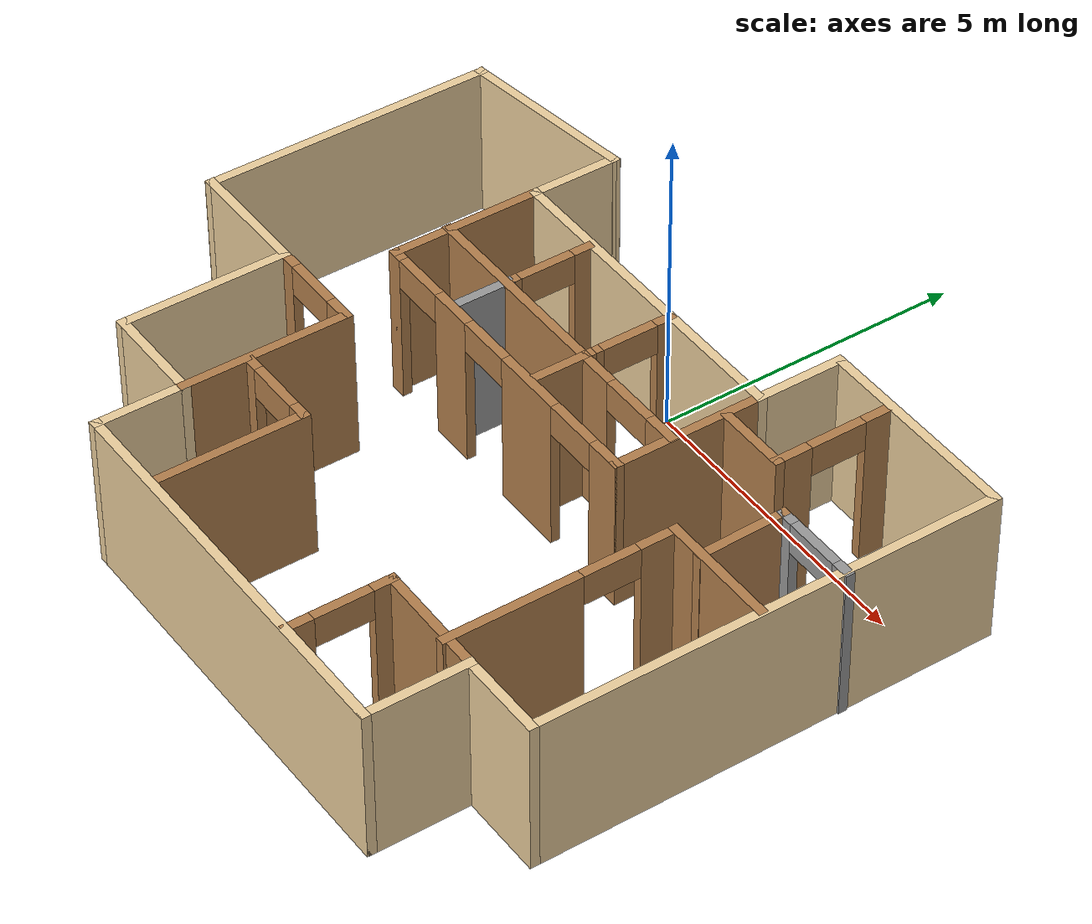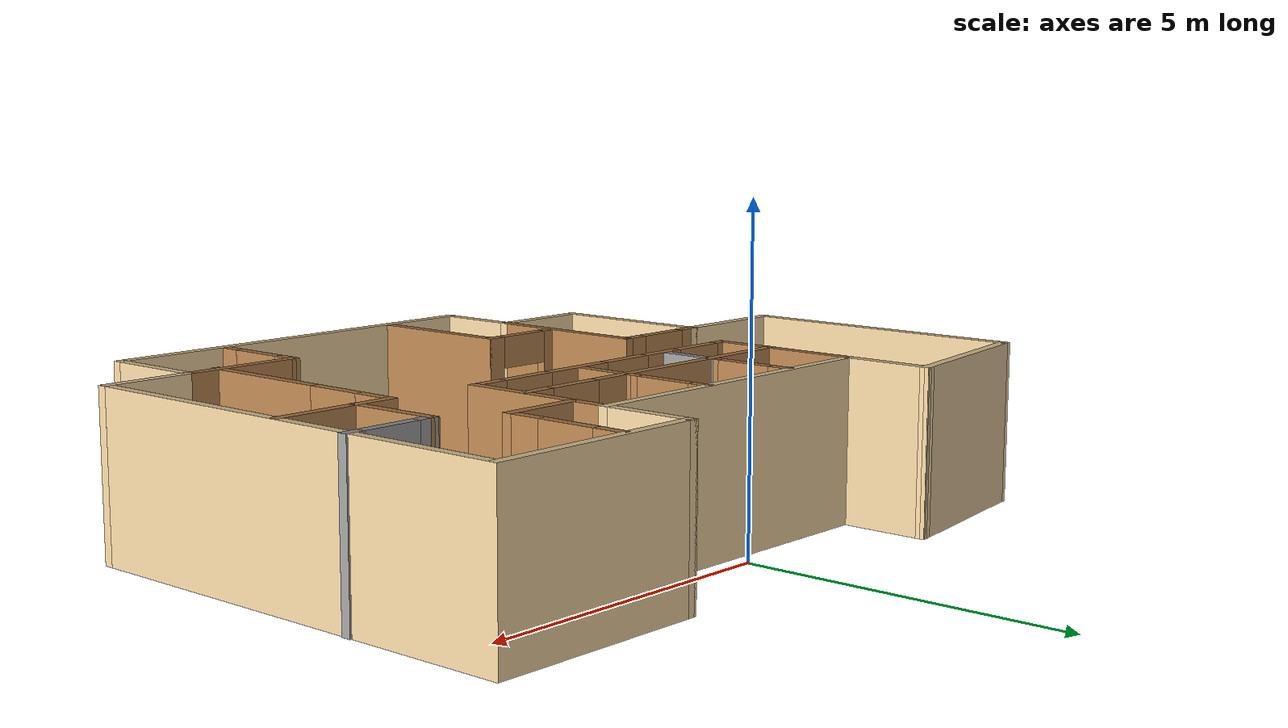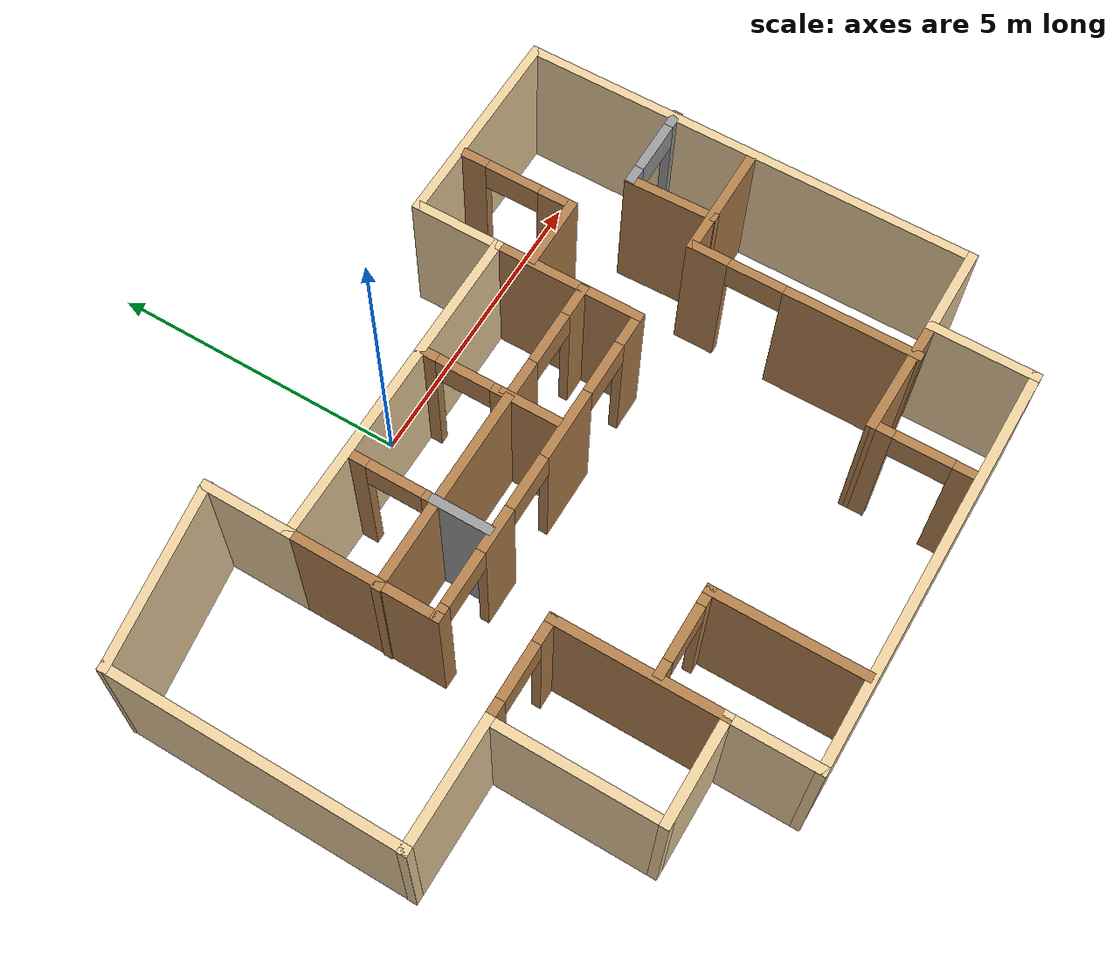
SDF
<?xml version='1.0'?>
<sdf version='1.6'>
  <model name='office'>
    <pose frame=''>0.170016 -3.47007 0 0 -0 0</pose>
    <link name='Wall_0'>
      <collision name='Wall_0_Collision'>
        <geometry>
          <box>
            <size>4.75 0.15 2.5</size>
          </box>
        </geometry>
        <pose frame=''>0 0 1.25 0 -0 0</pose>
      </collision>
      <visual name='Wall_0_Visual'>
        <pose frame=''>0 0 1.25 0 -0 0</pose>
        <geometry>
          <box>
            <size>4.75 0.15 2.5</size>
          </box>
        </geometry>
        <material>
          <script>
            <uri>file://media/materials/scripts/gazebo.material</uri>
            <name>Gazebo/Grey</name>
          </script>
          <ambient>0.921569 0.807843 0.615686 1</ambient>
        </material>
        <meta>
          <layer>0</layer>
        </meta>
      </visual>
      <pose frame=''>-5.75692 1.77007 0 0 -0 1.5708</pose>
    </link>
    <link name='Wall_10'>
      <collision name='Wall_10_Collision'>
        <geometry>
          <box>
            <size>1.5 0.15 2.5</size>
          </box>
        </geometry>
        <pose frame=''>0 0 1.25 0 -0 0</pose>
      </collision>
      <visual name='Wall_10_Visual'>
        <pose frame=''>0 0 1.25 0 -0 0</pose>
        <geometry>
          <box>
            <size>1.5 0.15 2.5</size>
          </box>
        </geometry>
        <material>
          <script>
            <uri>file://media/materials/scripts/gazebo.material</uri>
            <name>Gazebo/Grey</name>
          </script>
          <ambient>0.921569 0.807843 0.615686 1</ambient>
        </material>
        <meta>
          <layer>0</layer>
        </meta>
      </visual>
      <pose frame=''>-2.21002 -3.80493 0 0 -0 1.5708</pose>
    </link>
    <link name='Wall_11'>
      <collision name='Wall_11_Collision'>
        <geometry>
          <box>
            <size>1.75 0.15 2.5</size>
          </box>
        </geometry>
        <pose frame=''>0 0 1.25 0 -0 0</pose>
      </collision>
      <visual name='Wall_11_Visual'>
        <pose frame=''>0 0 1.25 0 -0 0</pose>
        <geometry>
          <box>
            <size>1.75 0.15 2.5</size>
          </box>
        </geometry>
        <material>
          <script>
            <uri>file://media/materials/scripts/gazebo.material</uri>
            <name>Gazebo/Grey</name>
          </script>
          <ambient>0.921569 0.807843 0.615686 1</ambient>
        </material>
        <meta>
          <layer>0</layer>
        </meta>
      </visual>
      <pose frame=''>-3.01002 -3.12993 0 0 -0 3.14159</pose>
    </link>
    <link name='Wall_12'>
      <collision name='Wall_12_Collision'>
        <geometry>
          <box>
            <size>2.75 0.15 2.5</size>
          </box>
        </geometry>
        <pose frame=''>0 0 1.25 0 -0 0</pose>
      </collision>
      <visual name='Wall_12_Visual'>
        <pose frame=''>0 0 1.25 0 -0 0</pose>
        <geometry>
          <box>
            <size>2.75 0.15 2.5</size>
          </box>
        </geometry>
        <material>
          <script>
            <uri>file://media/materials/scripts/gazebo.material</uri>
            <name>Gazebo/Grey</name>
          </script>
          <ambient>0.921569 0.807843 0.615686 1</ambient>
        </material>
        <meta>
          <layer>0</layer>
        </meta>
      </visual>
      <pose frame=''>-3.81002 -1.82993 0 0 -0 1.5708</pose>
    </link>
    <link name='Wall_13'>
      <collision name='Wall_13_Collision'>
        <geometry>
          <box>
            <size>2.10187 0.15 2.5</size>
          </box>
        </geometry>
        <pose frame=''>0 0 1.25 0 -0 0</pose>
      </collision>
      <visual name='Wall_13_Visual'>
        <pose frame=''>0 0 1.25 0 -0 0</pose>
        <geometry>
          <box>
            <size>2.10187 0.15 2.5</size>
          </box>
        </geometry>
        <material>
          <script>
            <uri>file://media/materials/scripts/gazebo.material</uri>
            <name>Gazebo/Grey</name>
          </script>
          <ambient>0.921569 0.807843 0.615686 1</ambient>
        </material>
        <meta>
          <layer>0</layer>
        </meta>
      </visual>
      <pose frame=''>-4.78595 -0.529931 0 0 -0 3.14159</pose>
    </link>
    <link name='Wall_17'>
      <collision name='Wall_17_Collision'>
        <geometry>
          <box>
            <size>2.97536 0.15 2.5</size>
          </box>
        </geometry>
        <pose frame=''>0 0 1.25 0 -0 0</pose>
      </collision>
      <visual name='Wall_17_Visual'>
        <pose frame=''>0 0 1.25 0 -0 0</pose>
        <geometry>
          <box>
            <size>2.97536 0.15 2.5</size>
          </box>
        </geometry>
        <material>
          <script>
            <uri>file://media/materials/scripts/gazebo.material</uri>
            <name>Gazebo/Grey</name>
          </script>
          <ambient>0.921569 0.807843 0.615686 1</ambient>
        </material>
        <meta>
          <layer>0</layer>
        </meta>
      </visual>
      <pose frame=''>-4.35847 4.27007 0 0 0 -2.99954</pose>
    </link>
    <link name='Wall_2'>
      <collision name='Wall_2_Collision'>
        <geometry>
          <box>
            <size>1.5 0.15 2.5</size>
          </box>
        </geometry>
        <pose frame=''>0 0 1.25 0 -0 0</pose>
      </collision>
      <visual name='Wall_2_Visual'>
        <pose frame=''>0 0 1.25 0 -0 0</pose>
        <geometry>
          <box>
            <size>1.5 0.15 2.5</size>
          </box>
        </geometry>
        <material>
          <script>
            <uri>file://media/materials/scripts/gazebo.material</uri>
            <name>Gazebo/Grey</name>
          </script>
          <ambient>0.921569 0.807843 0.615686 1</ambient>
        </material>
        <meta>
          <layer>0</layer>
        </meta>
      </visual>
      <pose frame=''>-2.96002 3.79507 0 0 0 -1.5708</pose>
    </link>
    <link name='Wall_21'>
      <pose frame=''>-3.01002 -0.529931 0 0 -0 0</pose>
      <visual name='Wall_21_Visual_0'>
        <pose frame=''>-0.682654 0 1.25 0 -0 0</pose>
        <geometry>
          <box>
            <size>0.384693 0.15 2.5</size>
          </box>
        </geometry>
        <material>
          <script>
            <uri>file://media/materials/scripts/gazebo.material</uri>
            <name>Gazebo/Wood</name>
          </script>
          <ambient>1 1 1 1</ambient>
        </material>
        <meta>
          <layer>0</layer>
        </meta>
      </visual>
      <collision name='Wall_21_Collision_0'>
        <geometry>
          <box>
            <size>0.384693 0.15 2.5</size>
          </box>
        </geometry>
        <pose frame=''>-0.682654 0 1.25 0 -0 0</pose>
      </collision>
      <visual name='Wall_21_Visual_1'>
        <pose frame=''>0.642346 0 1.25 0 -0 0</pose>
        <geometry>
          <box>
            <size>0.465307 0.15 2.5</size>
          </box>
        </geometry>
        <material>
          <script>
            <uri>file://media/materials/scripts/gazebo.material</uri>
            <name>Gazebo/Wood</name>
          </script>
          <ambient>1 1 1 1</ambient>
        </material>
        <meta>
          <layer>0</layer>
        </meta>
      </visual>
      <collision name='Wall_21_Collision_1'>
        <geometry>
          <box>
            <size>0.465307 0.15 2.5</size>
          </box>
        </geometry>
        <pose frame=''>0.642346 0 1.25 0 -0 0</pose>
      </collision>
      <visual name='Wall_21_Visual_2'>
        <pose frame=''>-0.040307 0 2.25 0 -0 0</pose>
        <geometry>
          <box>
            <size>0.9 0.15 0.5</size>
          </box>
        </geometry>
        <material>
          <script>
            <uri>file://media/materials/scripts/gazebo.material</uri>
            <name>Gazebo/Wood</name>
          </script>
          <ambient>1 1 1 1</ambient>
        </material>
        <meta>
          <layer>0</layer>
        </meta>
      </visual>
      <collision name='Wall_21_Collision_2'>
        <geometry>
          <box>
            <size>0.9 0.15 0.5</size>
          </box>
        </geometry>
        <pose frame=''>-0.040307 0 2.25 0 -0 0</pose>
      </collision>
    </link>
    <link name='Wall_22'>
      <collision name='Wall_22_Collision'>
        <geometry>
          <box>
            <size>2.75 0.15 2.5</size>
          </box>
        </geometry>
        <pose frame=''>0 0 1.25 0 -0 0</pose>
      </collision>
      <visual name='Wall_22_Visual'>
        <pose frame=''>0 0 1.25 0 -0 0</pose>
        <geometry>
          <box>
            <size>2.75 0.15 2.5</size>
          </box>
        </geometry>
        <material>
          <script>
            <uri>file://media/materials/scripts/gazebo.material</uri>
            <name>Gazebo/Wood</name>
          </script>
          <ambient>1 1 1 1</ambient>
        </material>
        <meta>
          <layer>0</layer>
        </meta>
      </visual>
      <pose frame=''>-2.21002 -1.82993 0 0 0 -1.5708</pose>
    </link>
    <link name='Wall_24'>
      <pose frame=''>-1.46934 -2.107 0 0 -0 0</pose>
      <visual name='Wall_24_Visual_0'>
        <pose frame=''>-0.609939 0 1.25 0 -0 0</pose>
        <geometry>
          <box>
            <size>0.280122 0.15 2.5</size>
          </box>
        </geometry>
        <material>
          <script>
            <uri>file://media/materials/scripts/gazebo.material</uri>
            <name>Gazebo/Wood</name>
          </script>
          <ambient>1 1 1 1</ambient>
        </material>
        <meta>
          <layer>0</layer>
        </meta>
      </visual>
      <collision name='Wall_24_Collision_0'>
        <geometry>
          <box>
            <size>0.280122 0.15 2.5</size>
          </box>
        </geometry>
        <pose frame=''>-0.609939 0 1.25 0 -0 0</pose>
      </collision>
      <visual name='Wall_24_Visual_1'>
        <pose frame=''>0.590061 0 1.25 0 -0 0</pose>
        <geometry>
          <box>
            <size>0.319878 0.15 2.5</size>
          </box>
        </geometry>
        <material>
          <script>
            <uri>file://media/materials/scripts/gazebo.material</uri>
            <name>Gazebo/Wood</name>
          </script>
          <ambient>1 1 1 1</ambient>
        </material>
        <meta>
          <layer>0</layer>
        </meta>
      </visual>
      <collision name='Wall_24_Collision_1'>
        <geometry>
          <box>
            <size>0.319878 0.15 2.5</size>
          </box>
        </geometry>
        <pose frame=''>0.590061 0 1.25 0 -0 0</pose>
      </collision>
      <visual name='Wall_24_Visual_2'>
        <pose frame=''>-0.019878 0 2.25 0 -0 0</pose>
        <geometry>
          <box>
            <size>0.9 0.15 0.5</size>
          </box>
        </geometry>
        <material>
          <script>
            <uri>file://media/materials/scripts/gazebo.material</uri>
            <name>Gazebo/Wood</name>
          </script>
          <ambient>1 1 1 1</ambient>
        </material>
        <meta>
          <layer>0</layer>
        </meta>
      </visual>
      <collision name='Wall_24_Collision_2'>
        <geometry>
          <box>
            <size>0.9 0.15 0.5</size>
          </box>
        </geometry>
        <pose frame=''>-0.019878 0 2.25 0 -0 0</pose>
      </collision>
    </link>
    <link name='Wall_25'>
      <collision name='Wall_25_Collision'>
        <geometry>
          <box>
            <size>2.5 0.15 2.5</size>
          </box>
        </geometry>
        <pose frame=''>0 0 1.25 0 -0 0</pose>
      </collision>
      <visual name='Wall_25_Visual'>
        <pose frame=''>0 0 1.25 0 -0 0</pose>
        <geometry>
          <box>
            <size>2.5 0.15 2.5</size>
          </box>
        </geometry>
        <material>
          <script>
            <uri>file://media/materials/scripts/gazebo.material</uri>
            <name>Gazebo/Wood</name>
          </script>
          <ambient>1 1 1 1</ambient>
        </material>
        <meta>
          <layer>0</layer>
        </meta>
      </visual>
      <pose frame=''>-0.794339 -3.282 0 0 0 -1.5708</pose>
    </link>
    <link name='Wall_27'>
      <pose frame=''>2.54652 -3.6539 0 0 -0 1.5708</pose>
      <visual name='Wall_27_Visual_0'>
        <pose frame=''>-0.65023 0 1.25 0 -0 0</pose>
        <geometry>
          <box>
            <size>0.449541 0.15 2.5</size>
          </box>
        </geometry>
        <material>
          <script>
            <uri>file://media/materials/scripts/gazebo.material</uri>
            <name>Gazebo/Wood</name>
          </script>
          <ambient>1 1 1 1</ambient>
        </material>
        <meta>
          <layer>0</layer>
        </meta>
      </visual>
      <collision name='Wall_27_Collision_0'>
        <geometry>
          <box>
            <size>0.449541 0.15 2.5</size>
          </box>
        </geometry>
        <pose frame=''>-0.65023 0 1.25 0 -0 0</pose>
      </collision>
      <visual name='Wall_27_Visual_1'>
        <pose frame=''>0.67477 0 1.25 0 -0 0</pose>
        <geometry>
          <box>
            <size>0.400459 0.15 2.5</size>
          </box>
        </geometry>
        <material>
          <script>
            <uri>file://media/materials/scripts/gazebo.material</uri>
            <name>Gazebo/Wood</name>
          </script>
          <ambient>1 1 1 1</ambient>
        </material>
        <meta>
          <layer>0</layer>
        </meta>
      </visual>
      <collision name='Wall_27_Collision_1'>
        <geometry>
          <box>
            <size>0.400459 0.15 2.5</size>
          </box>
        </geometry>
        <pose frame=''>0.67477 0 1.25 0 -0 0</pose>
      </collision>
      <visual name='Wall_27_Visual_2'>
        <pose frame=''>0.024541 0 2.25 0 -0 0</pose>
        <geometry>
          <box>
            <size>0.9 0.15 0.5</size>
          </box>
        </geometry>
        <material>
          <script>
            <uri>file://media/materials/scripts/gazebo.material</uri>
            <name>Gazebo/Wood</name>
          </script>
          <ambient>1 1 1 1</ambient>
        </material>
        <meta>
          <layer>0</layer>
        </meta>
      </visual>
      <collision name='Wall_27_Collision_2'>
        <geometry>
          <box>
            <size>0.9 0.15 0.5</size>
          </box>
        </geometry>
        <pose frame=''>0.024541 0 2.25 0 -0 0</pose>
      </collision>
    </link>
    <link name='Wall_28'>
      <collision name='Wall_28_Collision'>
        <geometry>
          <box>
            <size>1.99365 0.15 2.5</size>
          </box>
        </geometry>
        <pose frame=''>0 0 1.25 0 -0 0</pose>
      </collision>
      <visual name='Wall_28_Visual'>
        <pose frame=''>0 0 1.25 0 -0 0</pose>
        <geometry>
          <box>
            <size>1.99365 0.15 2.5</size>
          </box>
        </geometry>
        <material>
          <script>
            <uri>file://media/materials/scripts/gazebo.material</uri>
            <name>Gazebo/Wood</name>
          </script>
          <ambient>1 1 1 1</ambient>
        </material>
        <meta>
          <layer>0</layer>
        </meta>
      </visual>
      <pose frame=''>3.46825 -2.86691 0 0 0 -0.014121</pose>
    </link>
    <link name='Wall_3'>
      <collision name='Wall_3_Collision'>
        <geometry>
          <box>
            <size>5.5 0.15 2.5</size>
          </box>
        </geometry>
        <pose frame=''>0 0 1.25 0 -0 0</pose>
      </collision>
      <visual name='Wall_3_Visual'>
        <pose frame=''>0 0 1.25 0 -0 0</pose>
        <geometry>
          <box>
            <size>5.5 0.15 2.5</size>
          </box>
        </geometry>
        <material>
          <script>
            <uri>file://media/materials/scripts/gazebo.material</uri>
            <name>Gazebo/Grey</name>
          </script>
          <ambient>0.921569 0.807843 0.615686 1</ambient>
        </material>
        <meta>
          <layer>0</layer>
        </meta>
      </visual>
      <pose frame=''>-0.285016 3.12007 0 0 -0 0</pose>
    </link>
    <link name='Wall_30'>
      <pose frame=''>3.8558 -1.1198 0 0 -0 1.5708</pose>
      <visual name='Wall_30_Visual_0'>
        <pose frame=''>-0.78578 0 1.25 0 -0 0</pose>
        <geometry>
          <box>
            <size>2.17844 0.15 2.5</size>
          </box>
        </geometry>
        <material>
          <script>
            <uri>file://media/materials/scripts/gazebo.material</uri>
            <name>Gazebo/Wood</name>
          </script>
          <ambient>1 1 1 1</ambient>
        </material>
        <meta>
          <layer>0</layer>
        </meta>
      </visual>
      <collision name='Wall_30_Collision_0'>
        <geometry>
          <box>
            <size>2.17844 0.15 2.5</size>
          </box>
        </geometry>
        <pose frame=''>-0.78578 0 1.25 0 -0 0</pose>
      </collision>
      <visual name='Wall_30_Visual_1'>
        <pose frame=''>1.53922 0 1.25 0 -0 0</pose>
        <geometry>
          <box>
            <size>0.671559 0.15 2.5</size>
          </box>
        </geometry>
        <material>
          <script>
            <uri>file://media/materials/scripts/gazebo.material</uri>
            <name>Gazebo/Wood</name>
          </script>
          <ambient>1 1 1 1</ambient>
        </material>
        <meta>
          <layer>0</layer>
        </meta>
      </visual>
      <collision name='Wall_30_Collision_1'>
        <geometry>
          <box>
            <size>0.671559 0.15 2.5</size>
          </box>
        </geometry>
        <pose frame=''>1.53922 0 1.25 0 -0 0</pose>
      </collision>
      <visual name='Wall_30_Visual_2'>
        <pose frame=''>0.753441 0 2.25 0 -0 0</pose>
        <geometry>
          <box>
            <size>0.9 0.15 0.5</size>
          </box>
        </geometry>
        <material>
          <script>
            <uri>file://media/materials/scripts/gazebo.material</uri>
            <name>Gazebo/Wood</name>
          </script>
          <ambient>1 1 1 1</ambient>
        </material>
        <meta>
          <layer>0</layer>
        </meta>
      </visual>
      <collision name='Wall_30_Collision_2'>
        <geometry>
          <box>
            <size>0.9 0.15 0.5</size>
          </box>
        </geometry>
        <pose frame=''>0.753441 0 2.25 0 -0 0</pose>
      </collision>
    </link>
    <link name='Wall_31'>
      <collision name='Wall_31_Collision'>
        <geometry>
          <box>
            <size>2 0.15 2.5</size>
          </box>
        </geometry>
        <pose frame=''>0 0 1.25 0 -0 0</pose>
      </collision>
      <visual name='Wall_31_Visual'>
        <pose frame=''>0 0 1.25 0 -0 0</pose>
        <geometry>
          <box>
            <size>2 0.15 2.5</size>
          </box>
        </geometry>
        <material>
          <script>
            <uri>file://media/materials/scripts/gazebo.material</uri>
            <name>Gazebo/Wood</name>
          </script>
          <ambient>1 1 1 1</ambient>
        </material>
        <meta>
          <layer>0</layer>
        </meta>
      </visual>
      <pose frame=''>4.7808 0.680202 0 0 -0 0</pose>
    </link>
    <link name='Wall_33'>
      <collision name='Wall_33_Collision'>
        <geometry>
          <box>
            <size>1.5 0.15 2.5</size>
          </box>
        </geometry>
        <pose frame=''>0 0 1.25 0 -0 0</pose>
      </collision>
      <visual name='Wall_33_Visual'>
        <pose frame=''>0 0 1.25 0 -0 0</pose>
        <geometry>
          <box>
            <size>1.5 0.15 2.5</size>
          </box>
        </geometry>
        <material>
          <script>
            <uri>file://media/materials/scripts/gazebo.material</uri>
            <name>Gazebo/Wood</name>
          </script>
          <ambient>1 1 1 1</ambient>
        </material>
        <meta>
          <layer>0</layer>
        </meta>
      </visual>
      <pose frame=''>4.41678 1.34607 0 0 -0 1.5967</pose>
    </link>
    <link name='Wall_34'>
      <pose frame=''>5.09178 2.02107 0 0 -0 0</pose>
      <visual name='Wall_34_Visual_0'>
        <pose frame=''>-0.597678 0 1.25 0 -0 0</pose>
        <geometry>
          <box>
            <size>0.304643 0.15 2.5</size>
          </box>
        </geometry>
        <material>
          <script>
            <uri>file://media/materials/scripts/gazebo.material</uri>
            <name>Gazebo/Grey</name>
          </script>
          <ambient>1 1 1 1</ambient>
        </material>
        <meta>
          <layer>0</layer>
        </meta>
      </visual>
      <collision name='Wall_34_Collision_0'>
        <geometry>
          <box>
            <size>0.304643 0.15 2.5</size>
          </box>
        </geometry>
        <pose frame=''>-0.597678 0 1.25 0 -0 0</pose>
      </collision>
      <visual name='Wall_34_Visual_1'>
        <pose frame=''>0.602322 0 1.25 0 -0 0</pose>
        <geometry>
          <box>
            <size>0.295357 0.15 2.5</size>
          </box>
        </geometry>
        <material>
          <script>
            <uri>file://media/materials/scripts/gazebo.material</uri>
            <name>Gazebo/Grey</name>
          </script>
          <ambient>1 1 1 1</ambient>
        </material>
        <meta>
          <layer>0</layer>
        </meta>
      </visual>
      <collision name='Wall_34_Collision_1'>
        <geometry>
          <box>
            <size>0.295357 0.15 2.5</size>
          </box>
        </geometry>
        <pose frame=''>0.602322 0 1.25 0 -0 0</pose>
      </collision>
      <visual name='Wall_34_Visual_2'>
        <pose frame=''>0.004643 0 2.25 0 -0 0</pose>
        <geometry>
          <box>
            <size>0.9 0.15 0.5</size>
          </box>
        </geometry>
        <material>
          <script>
            <uri>file://media/materials/scripts/gazebo.material</uri>
            <name>Gazebo/Grey</name>
          </script>
          <ambient>1 1 1 1</ambient>
        </material>
        <meta>
          <layer>0</layer>
        </meta>
      </visual>
      <collision name='Wall_34_Collision_2'>
        <geometry>
          <box>
            <size>0.9 0.15 0.5</size>
          </box>
        </geometry>
        <pose frame=''>0.004643 0 2.25 0 -0 0</pose>
      </collision>
    </link>
    <link name='Wall_36'>
      <pose frame=''>3.54343 3.47496 0 0 0 -1.5708</pose>
      <visual name='Wall_36_Visual_0'>
        <pose frame=''>-0.754697 0 1.25 0 -0 0</pose>
        <geometry>
          <box>
            <size>0.490606 0.15 2.5</size>
          </box>
        </geometry>
        <material>
          <script>
            <uri>file://media/materials/scripts/gazebo.material</uri>
            <name>Gazebo/Wood</name>
          </script>
          <ambient>1 1 1 1</ambient>
        </material>
        <meta>
          <layer>0</layer>
        </meta>
      </visual>
      <collision name='Wall_36_Collision_0'>
        <geometry>
          <box>
            <size>0.490606 0.15 2.5</size>
          </box>
        </geometry>
        <pose frame=''>-0.754697 0 1.25 0 -0 0</pose>
      </collision>
      <visual name='Wall_36_Visual_1'>
        <pose frame=''>0.695303 0 1.25 0 -0 0</pose>
        <geometry>
          <box>
            <size>0.609394 0.15 2.5</size>
          </box>
        </geometry>
        <material>
          <script>
            <uri>file://media/materials/scripts/gazebo.material</uri>
            <name>Gazebo/Wood</name>
          </script>
          <ambient>1 1 1 1</ambient>
        </material>
        <meta>
          <layer>0</layer>
        </meta>
      </visual>
      <collision name='Wall_36_Collision_1'>
        <geometry>
          <box>
            <size>0.609394 0.15 2.5</size>
          </box>
        </geometry>
        <pose frame=''>0.695303 0 1.25 0 -0 0</pose>
      </collision>
      <visual name='Wall_36_Visual_2'>
        <pose frame=''>-0.059394 0 2.25 0 -0 0</pose>
        <geometry>
          <box>
            <size>0.9 0.15 0.5</size>
          </box>
        </geometry>
        <material>
          <script>
            <uri>file://media/materials/scripts/gazebo.material</uri>
            <name>Gazebo/Wood</name>
          </script>
          <ambient>1 1 1 1</ambient>
        </material>
        <meta>
          <layer>0</layer>
        </meta>
      </visual>
      <collision name='Wall_36_Collision_2'>
        <geometry>
          <box>
            <size>0.9 0.15 0.5</size>
          </box>
        </geometry>
        <pose frame=''>-0.059394 0 2.25 0 -0 0</pose>
      </collision>
    </link>
    <link name='Wall_37'>
      <collision name='Wall_37_Collision'>
        <geometry>
          <box>
            <size>1.25 0.15 2.5</size>
          </box>
        </geometry>
        <pose frame=''>0 0 1.25 0 -0 0</pose>
      </collision>
      <visual name='Wall_37_Visual'>
        <pose frame=''>0 0 1.25 0 -0 0</pose>
        <geometry>
          <box>
            <size>1.25 0.15 2.5</size>
          </box>
        </geometry>
        <material>
          <script>
            <uri>file://media/materials/scripts/gazebo.material</uri>
            <name>Gazebo/Wood</name>
          </script>
          <ambient>1 1 1 1</ambient>
        </material>
        <meta>
          <layer>0</layer>
        </meta>
      </visual>
      <pose frame=''>2.99343 2.54996 0 0 -0 3.14159</pose>
    </link>
    <link name='Wall_39'>
      <collision name='Wall_39_Collision'>
        <geometry>
          <box>
            <size>2.5 0.15 2.5</size>
          </box>
        </geometry>
        <pose frame=''>0 0 1.25 0 -0 0</pose>
      </collision>
      <visual name='Wall_39_Visual'>
        <pose frame=''>0 0 1.25 0 -0 0</pose>
        <geometry>
          <box>
            <size>2.5 0.15 2.5</size>
          </box>
        </geometry>
        <material>
          <script>
            <uri>file://media/materials/scripts/gazebo.material</uri>
            <name>Gazebo/Wood</name>
          </script>
          <ambient>1 1 1 1</ambient>
        </material>
        <meta>
          <layer>0</layer>
        </meta>
      </visual>
      <pose frame=''>-2.96002 1.94507 0 0 0 -1.5708</pose>
    </link>
    <link name='Wall_4'>
      <collision name='Wall_4_Collision'>
        <geometry>
          <box>
            <size>1.5 0.15 2.5</size>
          </box>
        </geometry>
        <pose frame=''>0 0 1.25 0 -0 0</pose>
      </collision>
      <visual name='Wall_4_Visual'>
        <pose frame=''>0 0 1.25 0 -0 0</pose>
        <geometry>
          <box>
            <size>1.5 0.15 2.5</size>
          </box>
        </geometry>
        <material>
          <script>
            <uri>file://media/materials/scripts/gazebo.material</uri>
            <name>Gazebo/Grey</name>
          </script>
          <ambient>0.921569 0.807843 0.615686 1</ambient>
        </material>
        <meta>
          <layer>0</layer>
        </meta>
      </visual>
      <pose frame=''>2.38998 3.79507 0 0 -0 1.5708</pose>
    </link>
    <link name='Wall_40'>
      <pose frame=''>-0.285016 0.770069 0 0 -0 0</pose>
      <visual name='Wall_40_Visual_0'>
        <pose frame=''>-2.61536 0 1.25 0 -0 0</pose>
        <geometry>
          <box>
            <size>0.269275 0.15 2.5</size>
          </box>
        </geometry>
        <material>
          <script>
            <uri>file://media/materials/scripts/gazebo.material</uri>
            <name>Gazebo/Wood</name>
          </script>
          <ambient>1 1 1 1</ambient>
        </material>
        <meta>
          <layer>0</layer>
        </meta>
      </visual>
      <collision name='Wall_40_Collision_0'>
        <geometry>
          <box>
            <size>0.269275 0.15 2.5</size>
          </box>
        </geometry>
        <pose frame=''>-2.61536 0 1.25 0 -0 0</pose>
      </collision>
      <visual name='Wall_40_Visual_1'>
        <pose frame=''>-1.20869 0 1.25 0 -0 0</pose>
        <geometry>
          <box>
            <size>0.744066 0.15 2.5</size>
          </box>
        </geometry>
        <material>
          <script>
            <uri>file://media/materials/scripts/gazebo.material</uri>
            <name>Gazebo/Wood</name>
          </script>
          <ambient>1 1 1 1</ambient>
        </material>
        <meta>
          <layer>0</layer>
        </meta>
      </visual>
      <collision name='Wall_40_Collision_1'>
        <geometry>
          <box>
            <size>0.744066 0.15 2.5</size>
          </box>
        </geometry>
        <pose frame=''>-1.20869 0 1.25 0 -0 0</pose>
      </collision>
      <visual name='Wall_40_Visual_2'>
        <pose frame=''>0.654 0 1.25 0 -0 0</pose>
        <geometry>
          <box>
            <size>1.18132 0.15 2.5</size>
          </box>
        </geometry>
        <material>
          <script>
            <uri>file://media/materials/scripts/gazebo.material</uri>
            <name>Gazebo/Wood</name>
          </script>
          <ambient>1 1 1 1</ambient>
        </material>
        <meta>
          <layer>0</layer>
        </meta>
      </visual>
      <collision name='Wall_40_Collision_2'>
        <geometry>
          <box>
            <size>1.18132 0.15 2.5</size>
          </box>
        </geometry>
        <pose frame=''>0.654 0 1.25 0 -0 0</pose>
      </collision>
      <visual name='Wall_40_Visual_3'>
        <pose frame=''>2.44733 0 1.25 0 -0 0</pose>
        <geometry>
          <box>
            <size>0.605341 0.15 2.5</size>
          </box>
        </geometry>
        <material>
          <script>
            <uri>file://media/materials/scripts/gazebo.material</uri>
            <name>Gazebo/Wood</name>
          </script>
          <ambient>1 1 1 1</ambient>
        </material>
        <meta>
          <layer>0</layer>
        </meta>
      </visual>
      <collision name='Wall_40_Collision_3'>
        <geometry>
          <box>
            <size>0.605341 0.15 2.5</size>
          </box>
        </geometry>
        <pose frame=''>2.44733 0 1.25 0 -0 0</pose>
      </collision>
      <visual name='Wall_40_Visual_4'>
        <pose frame=''>-2.03072 0 2.25 0 -0 0</pose>
        <geometry>
          <box>
            <size>0.9 0.15 0.5</size>
          </box>
        </geometry>
        <material>
          <script>
            <uri>file://media/materials/scripts/gazebo.material</uri>
            <name>Gazebo/Wood</name>
          </script>
          <ambient>1 1 1 1</ambient>
        </material>
        <meta>
          <layer>0</layer>
        </meta>
      </visual>
      <collision name='Wall_40_Collision_4'>
        <geometry>
          <box>
            <size>0.9 0.15 0.5</size>
          </box>
        </geometry>
        <pose frame=''>-2.03072 0 2.25 0 -0 0</pose>
      </collision>
      <visual name='Wall_40_Visual_5'>
        <pose frame=''>-0.386659 0 2.25 0 -0 0</pose>
        <geometry>
          <box>
            <size>0.9 0.15 0.5</size>
          </box>
        </geometry>
        <material>
          <script>
            <uri>file://media/materials/scripts/gazebo.material</uri>
            <name>Gazebo/Wood</name>
          </script>
          <ambient>1 1 1 1</ambient>
        </material>
        <meta>
          <layer>0</layer>
        </meta>
      </visual>
      <collision name='Wall_40_Collision_5'>
        <geometry>
          <box>
            <size>0.9 0.15 0.5</size>
          </box>
        </geometry>
        <pose frame=''>-0.386659 0 2.25 0 -0 0</pose>
      </collision>
      <visual name='Wall_40_Visual_6'>
        <pose frame=''>1.69466 0 2.25 0 -0 0</pose>
        <geometry>
          <box>
            <size>0.9 0.15 0.5</size>
          </box>
        </geometry>
        <material>
          <script>
            <uri>file://media/materials/scripts/gazebo.material</uri>
            <name>Gazebo/Wood</name>
          </script>
          <ambient>1 1 1 1</ambient>
        </material>
        <meta>
          <layer>0</layer>
        </meta>
      </visual>
      <collision name='Wall_40_Collision_6'>
        <geometry>
          <box>
            <size>0.9 0.15 0.5</size>
          </box>
        </geometry>
        <pose frame=''>1.69466 0 2.25 0 -0 0</pose>
      </collision>
    </link>
    <link name='Wall_41'>
      <collision name='Wall_41_Collision'>
        <geometry>
          <box>
            <size>2.5 0.15 2.5</size>
          </box>
        </geometry>
        <pose frame=''>0 0 1.25 0 -0 0</pose>
      </collision>
      <visual name='Wall_41_Visual'>
        <pose frame=''>0 0 1.25 0 -0 0</pose>
        <geometry>
          <box>
            <size>2.5 0.15 2.5</size>
          </box>
        </geometry>
        <material>
          <script>
            <uri>file://media/materials/scripts/gazebo.material</uri>
            <name>Gazebo/Wood</name>
          </script>
          <ambient>1 1 1 1</ambient>
        </material>
        <meta>
          <layer>0</layer>
        </meta>
      </visual>
      <pose frame=''>2.38998 1.94507 0 0 -0 1.5708</pose>
    </link>
    <link name='Wall_43'>
      <pose frame=''>-0.305363 1.67151 0 0 -0 0</pose>
      <visual name='Wall_43_Visual_0'>
        <pose frame=''>-0.727606 0 1.25 0 -0 0</pose>
        <geometry>
          <box>
            <size>4.04479 0.15 2.5</size>
          </box>
        </geometry>
        <material>
          <script>
            <uri>file://media/materials/scripts/gazebo.material</uri>
            <name>Gazebo/Wood</name>
          </script>
          <ambient>1 1 1 1</ambient>
        </material>
        <meta>
          <layer>0</layer>
        </meta>
      </visual>
      <collision name='Wall_43_Collision_0'>
        <geometry>
          <box>
            <size>4.04479 0.15 2.5</size>
          </box>
        </geometry>
        <pose frame=''>-0.727606 0 1.25 0 -0 0</pose>
      </collision>
      <visual name='Wall_43_Visual_1'>
        <pose frame=''>2.47239 0 1.25 0 -0 0</pose>
        <geometry>
          <box>
            <size>0.555213 0.15 2.5</size>
          </box>
        </geometry>
        <material>
          <script>
            <uri>file://media/materials/scripts/gazebo.material</uri>
            <name>Gazebo/Wood</name>
          </script>
          <ambient>1 1 1 1</ambient>
        </material>
        <meta>
          <layer>0</layer>
        </meta>
      </visual>
      <collision name='Wall_43_Collision_1'>
        <geometry>
          <box>
            <size>0.555213 0.15 2.5</size>
          </box>
        </geometry>
        <pose frame=''>2.47239 0 1.25 0 -0 0</pose>
      </collision>
      <visual name='Wall_43_Visual_2'>
        <pose frame=''>1.74479 0 2.25 0 -0 0</pose>
        <geometry>
          <box>
            <size>0.9 0.15 0.5</size>
          </box>
        </geometry>
        <material>
          <script>
            <uri>file://media/materials/scripts/gazebo.material</uri>
            <name>Gazebo/Wood</name>
          </script>
          <ambient>1 1 1 1</ambient>
        </material>
        <meta>
          <layer>0</layer>
        </meta>
      </visual>
      <collision name='Wall_43_Collision_2'>
        <geometry>
          <box>
            <size>0.9 0.15 0.5</size>
          </box>
        </geometry>
        <pose frame=''>1.74479 0 2.25 0 -0 0</pose>
      </collision>
    </link>
    <link name='Wall_45'>
      <pose frame=''>-1.54618 2.37823 0 0 0 -1.5708</pose>
      <visual name='Wall_45_Visual_0'>
        <pose frame=''>-0.574315 0 1.25 0 -0 0</pose>
        <geometry>
          <box>
            <size>0.351371 0.15 2.5</size>
          </box>
        </geometry>
        <material>
          <script>
            <uri>file://media/materials/scripts/gazebo.material</uri>
            <name>Gazebo/Wood</name>
          </script>
          <ambient>1 1 1 1</ambient>
        </material>
        <meta>
          <layer>0</layer>
        </meta>
      </visual>
      <collision name='Wall_45_Collision_0'>
        <geometry>
          <box>
            <size>0.351371 0.15 2.5</size>
          </box>
        </geometry>
        <pose frame=''>-0.574315 0 1.25 0 -0 0</pose>
      </collision>
      <visual name='Wall_45_Visual_1'>
        <pose frame=''>0.625685 0 1.25 0 -0 0</pose>
        <geometry>
          <box>
            <size>0.248629 0.15 2.5</size>
          </box>
        </geometry>
        <material>
          <script>
            <uri>file://media/materials/scripts/gazebo.material</uri>
            <name>Gazebo/Wood</name>
          </script>
          <ambient>1 1 1 1</ambient>
        </material>
        <meta>
          <layer>0</layer>
        </meta>
      </visual>
      <collision name='Wall_45_Collision_1'>
        <geometry>
          <box>
            <size>0.248629 0.15 2.5</size>
          </box>
        </geometry>
        <pose frame=''>0.625685 0 1.25 0 -0 0</pose>
      </collision>
      <visual name='Wall_45_Visual_2'>
        <pose frame=''>0.051371 0 2.25 0 -0 0</pose>
        <geometry>
          <box>
            <size>0.9 0.15 0.5</size>
          </box>
        </geometry>
        <material>
          <script>
            <uri>file://media/materials/scripts/gazebo.material</uri>
            <name>Gazebo/Wood</name>
          </script>
          <ambient>1 1 1 1</ambient>
        </material>
        <meta>
          <layer>0</layer>
        </meta>
      </visual>
      <collision name='Wall_45_Collision_2'>
        <geometry>
          <box>
            <size>0.9 0.15 0.5</size>
          </box>
        </geometry>
        <pose frame=''>0.051371 0 2.25 0 -0 0</pose>
      </collision>
    </link>
    <link name='Wall_47'>
      <pose frame=''>0.342749 2.4307 0 0 0 -1.5708</pose>
      <visual name='Wall_47_Visual_0'>
        <pose frame=''>-0.58258 0 1.25 0 -0 0</pose>
        <geometry>
          <box>
            <size>0.334841 0.15 2.5</size>
          </box>
        </geometry>
        <material>
          <script>
            <uri>file://media/materials/scripts/gazebo.material</uri>
            <name>Gazebo/Wood</name>
          </script>
          <ambient>1 1 1 1</ambient>
        </material>
        <meta>
          <layer>0</layer>
        </meta>
      </visual>
      <collision name='Wall_47_Collision_0'>
        <geometry>
          <box>
            <size>0.334841 0.15 2.5</size>
          </box>
        </geometry>
        <pose frame=''>-0.58258 0 1.25 0 -0 0</pose>
      </collision>
      <visual name='Wall_47_Visual_1'>
        <pose frame=''>0.61742 0 1.25 0 -0 0</pose>
        <geometry>
          <box>
            <size>0.265159 0.15 2.5</size>
          </box>
        </geometry>
        <material>
          <script>
            <uri>file://media/materials/scripts/gazebo.material</uri>
            <name>Gazebo/Wood</name>
          </script>
          <ambient>1 1 1 1</ambient>
        </material>
        <meta>
          <layer>0</layer>
        </meta>
      </visual>
      <collision name='Wall_47_Collision_1'>
        <geometry>
          <box>
            <size>0.265159 0.15 2.5</size>
          </box>
        </geometry>
        <pose frame=''>0.61742 0 1.25 0 -0 0</pose>
      </collision>
      <visual name='Wall_47_Visual_2'>
        <pose frame=''>0.034841 0 2.25 0 -0 0</pose>
        <geometry>
          <box>
            <size>0.9 0.15 0.5</size>
          </box>
        </geometry>
        <material>
          <script>
            <uri>file://media/materials/scripts/gazebo.material</uri>
            <name>Gazebo/Wood</name>
          </script>
          <ambient>1 1 1 1</ambient>
        </material>
        <meta>
          <layer>0</layer>
        </meta>
      </visual>
      <collision name='Wall_47_Collision_2'>
        <geometry>
          <box>
            <size>0.9 0.15 0.5</size>
          </box>
        </geometry>
        <pose frame=''>0.034841 0 2.25 0 -0 0</pose>
      </collision>
    </link>
    <link name='Wall_49'>
      <collision name='Wall_49_Collision'>
        <geometry>
          <box>
            <size>1 0.15 2.5</size>
          </box>
        </geometry>
        <pose frame=''>0 0 1.25 0 -0 0</pose>
      </collision>
      <visual name='Wall_49_Visual'>
        <pose frame=''>0 0 1.25 0 -0 0</pose>
        <geometry>
          <box>
            <size>1 0.15 2.5</size>
          </box>
        </geometry>
        <material>
          <script>
            <uri>file://media/materials/scripts/gazebo.material</uri>
            <name>Gazebo/Grey</name>
          </script>
          <ambient>1 1 1 1</ambient>
        </material>
        <meta>
          <layer>0</layer>
        </meta>
      </visual>
      <pose frame=''>-1.54618 1.27823 0 0 0 -1.5708</pose>
    </link>
    <link name='Wall_5'>
      <collision name='Wall_5_Collision'>
        <geometry>
          <box>
            <size>3.5 0.15 2.5</size>
          </box>
        </geometry>
        <pose frame=''>0 0 1.25 0 -0 0</pose>
      </collision>
      <visual name='Wall_5_Visual'>
        <pose frame=''>0 0 1.25 0 -0 0</pose>
        <geometry>
          <box>
            <size>3.5 0.15 2.5</size>
          </box>
        </geometry>
        <material>
          <script>
            <uri>file://media/materials/scripts/gazebo.material</uri>
            <name>Gazebo/Grey</name>
          </script>
          <ambient>0.921569 0.807843 0.615686 1</ambient>
        </material>
        <meta>
          <layer>0</layer>
        </meta>
      </visual>
      <pose frame=''>4.06498 4.47007 0 0 -0 0</pose>
    </link>
    <link name='Wall_51'>
      <collision name='Wall_51_Collision'>
        <geometry>
          <box>
            <size>1 0.15 2.5</size>
          </box>
        </geometry>
        <pose frame=''>0 0 1.25 0 -0 0</pose>
      </collision>
      <visual name='Wall_51_Visual'>
        <pose frame=''>0 0 1.25 0 -0 0</pose>
        <geometry>
          <box>
            <size>1 0.15 2.5</size>
          </box>
        </geometry>
        <material>
          <script>
            <uri>file://media/materials/scripts/gazebo.material</uri>
            <name>Gazebo/Wood</name>
          </script>
          <ambient>1 1 1 1</ambient>
        </material>
        <meta>
          <layer>0</layer>
        </meta>
      </visual>
      <pose frame=''>0.342749 1.3307 0 0 0 -1.5708</pose>
    </link>
    <link name='Wall_6'>
      <collision name='Wall_6_Collision'>
        <geometry>
          <box>
            <size>7.5 0.15 2.5</size>
          </box>
        </geometry>
        <pose frame=''>0 0 1.25 0 -0 0</pose>
      </collision>
      <visual name='Wall_6_Visual'>
        <pose frame=''>0 0 1.25 0 -0 0</pose>
        <geometry>
          <box>
            <size>7.5 0.15 2.5</size>
          </box>
        </geometry>
        <material>
          <script>
            <uri>file://media/materials/scripts/gazebo.material</uri>
            <name>Gazebo/Grey</name>
          </script>
          <ambient>0.921569 0.807843 0.615686 1</ambient>
        </material>
        <meta>
          <layer>0</layer>
        </meta>
      </visual>
      <pose frame=''>5.73998 0.795069 0 0 0 -1.5708</pose>
    </link>
    <link name='Wall_7'>
      <collision name='Wall_7_Collision'>
        <geometry>
          <box>
            <size>1.5 0.15 2.5</size>
          </box>
        </geometry>
        <pose frame=''>0 0 1.25 0 -0 0</pose>
      </collision>
      <visual name='Wall_7_Visual'>
        <pose frame=''>0 0 1.25 0 -0 0</pose>
        <geometry>
          <box>
            <size>1.5 0.15 2.5</size>
          </box>
        </geometry>
        <material>
          <script>
            <uri>file://media/materials/scripts/gazebo.material</uri>
            <name>Gazebo/Grey</name>
          </script>
          <ambient>0.921569 0.807843 0.615686 1</ambient>
        </material>
        <meta>
          <layer>0</layer>
        </meta>
      </visual>
      <pose frame=''>5.06498 -2.87993 0 0 -0 3.14159</pose>
    </link>
    <link name='Wall_8'>
      <collision name='Wall_8_Collision'>
        <geometry>
          <box>
            <size>1.75 0.15 2.5</size>
          </box>
        </geometry>
        <pose frame=''>0 0 1.25 0 -0 0</pose>
      </collision>
      <visual name='Wall_8_Visual'>
        <pose frame=''>0 0 1.25 0 -0 0</pose>
        <geometry>
          <box>
            <size>1.75 0.15 2.5</size>
          </box>
        </geometry>
        <material>
          <script>
            <uri>file://media/materials/scripts/gazebo.material</uri>
            <name>Gazebo/Grey</name>
          </script>
          <ambient>0.921569 0.807843 0.615686 1</ambient>
        </material>
        <meta>
          <layer>0</layer>
        </meta>
      </visual>
      <pose frame=''>4.38998 -3.67993 0 0 0 -1.5708</pose>
    </link>
    <link name='Wall_9'>
      <collision name='Wall_9_Collision'>
        <geometry>
          <box>
            <size>6.75 0.15 2.5</size>
          </box>
        </geometry>
        <pose frame=''>0 0 1.25 0 -0 0</pose>
      </collision>
      <visual name='Wall_9_Visual'>
        <pose frame=''>0 0 1.25 0 -0 0</pose>
        <geometry>
          <box>
            <size>6.75 0.15 2.5</size>
          </box>
        </geometry>
        <material>
          <script>
            <uri>file://media/materials/scripts/gazebo.material</uri>
            <name>Gazebo/Grey</name>
          </script>
          <ambient>0.921569 0.807843 0.615686 1</ambient>
        </material>
        <meta>
          <layer>0</layer>
        </meta>
      </visual>
      <pose frame=''>1.08998 -4.47993 0 0 -0 3.14159</pose>
    </link>
    <static>1</static>
  </model>
</sdf>
